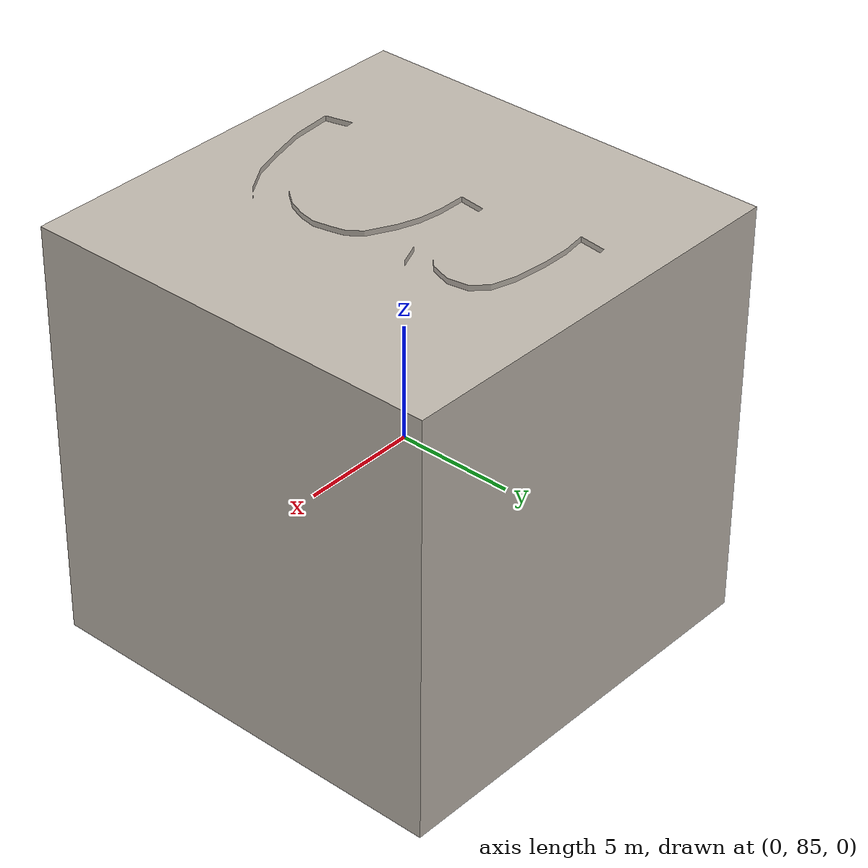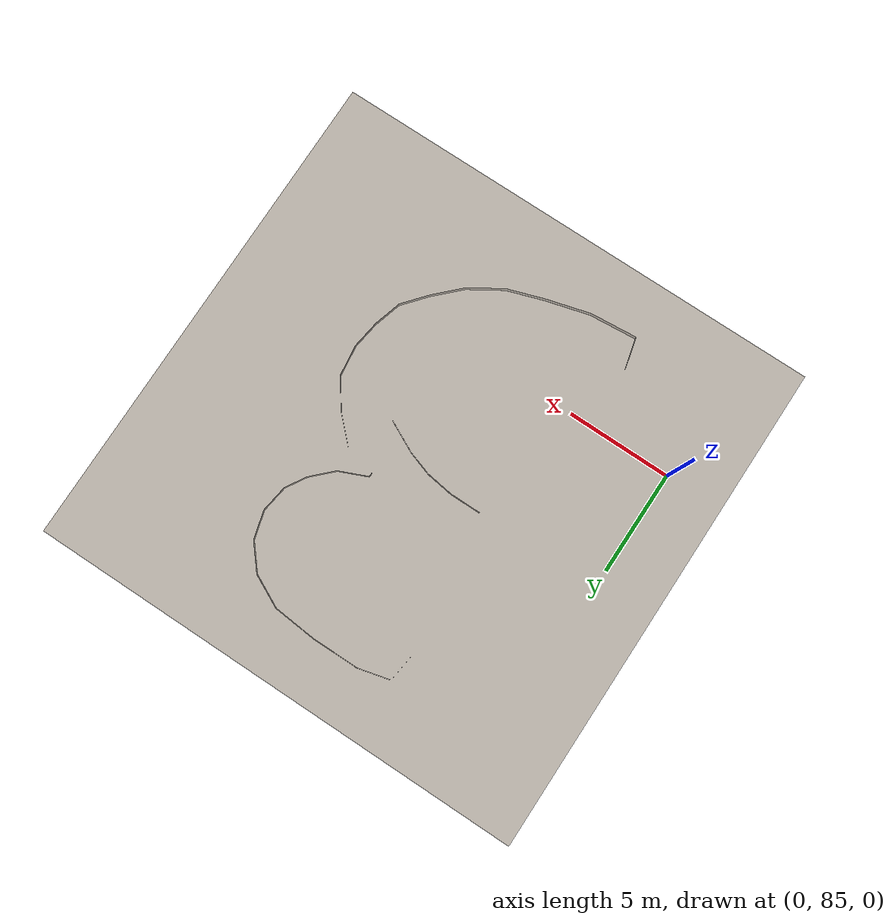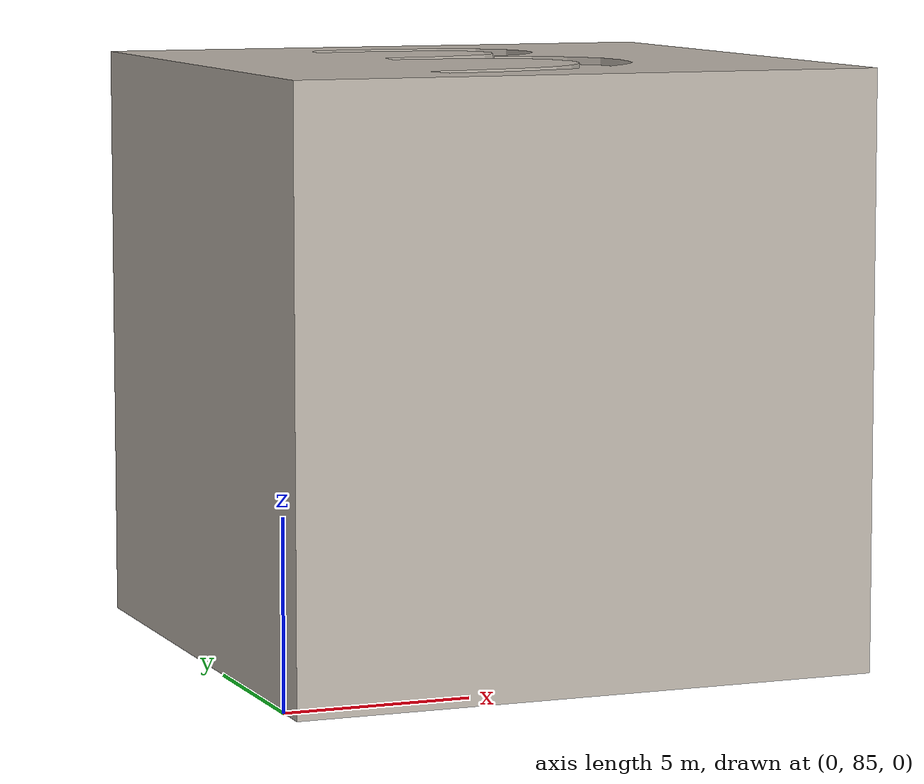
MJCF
<mujoco model="cube3">
  <asset>
    <mesh file="meshes/cube3.stl" name="cube3_mesh" scale="0.8 0.8 0.8"/>
    <texture type="2d" file="../textures/number3.png" rgb1="1 1 1" name="tex-number3"/>
    <material name="cube3" reflectance="0.5" texrepeat="1 1" texture="tex-number3" texuniform="false"/>
  </asset>
  <worldbody>
    <body>
      <body name="object">
        <geom pos="0 0 0" mesh="cube3_mesh" type="mesh" solimp="0.998 0.998 0.001" solref="0.001 1" density="150" friction="0.95 0.3 0.1" material="cube3" group="0" condim="4"/>
      </body>
      <site rgba="0 0 0 0" size="0.005" pos="0 0 -0.10" name="bottom_site"/>
      <site rgba="0 0 0 0" size="0.005" pos="0 0 0.03" name="top_site"/>
      <site rgba="0 0 0 0" size="0.005" pos="0.04 0.03 0" name="horizontal_radius_site"/>
    </body>
  </worldbody>
</mujoco>
